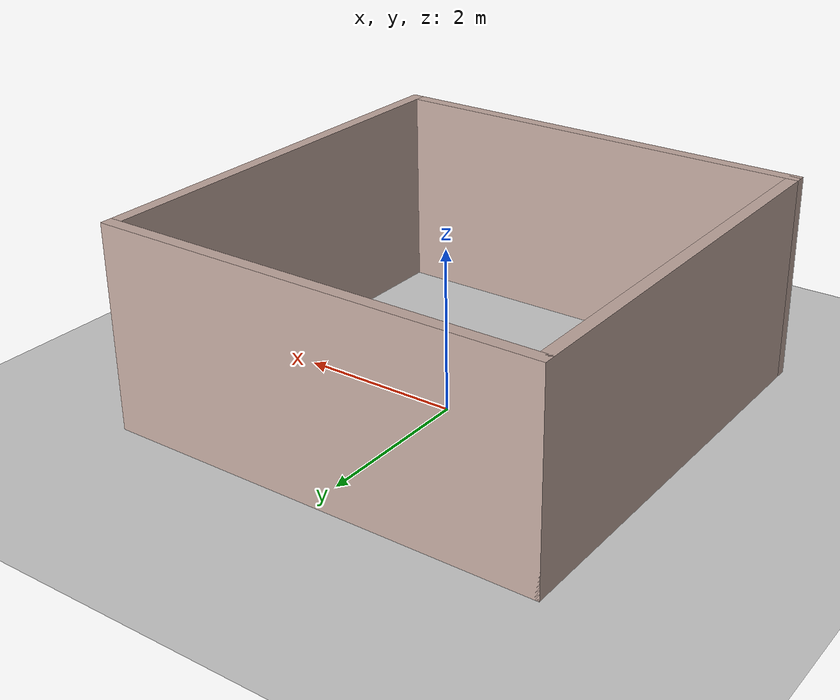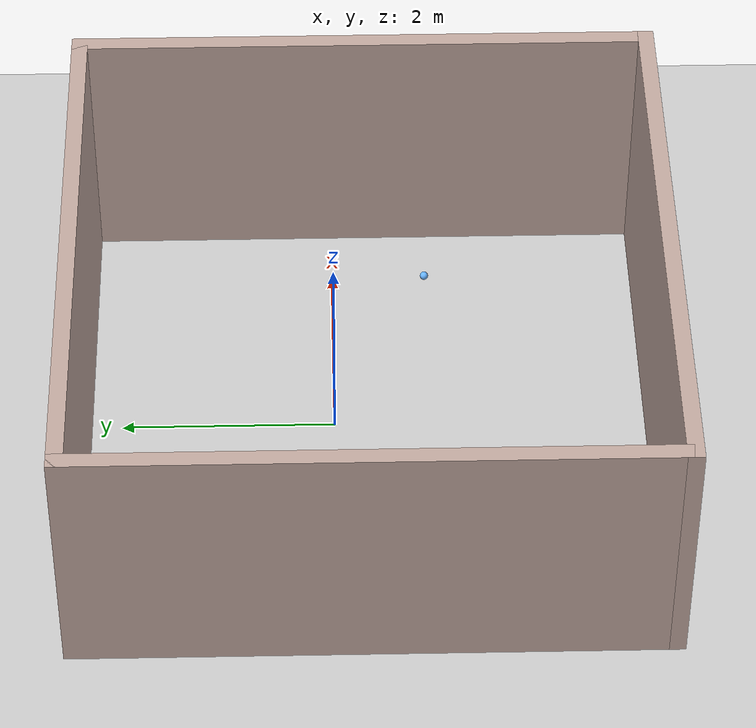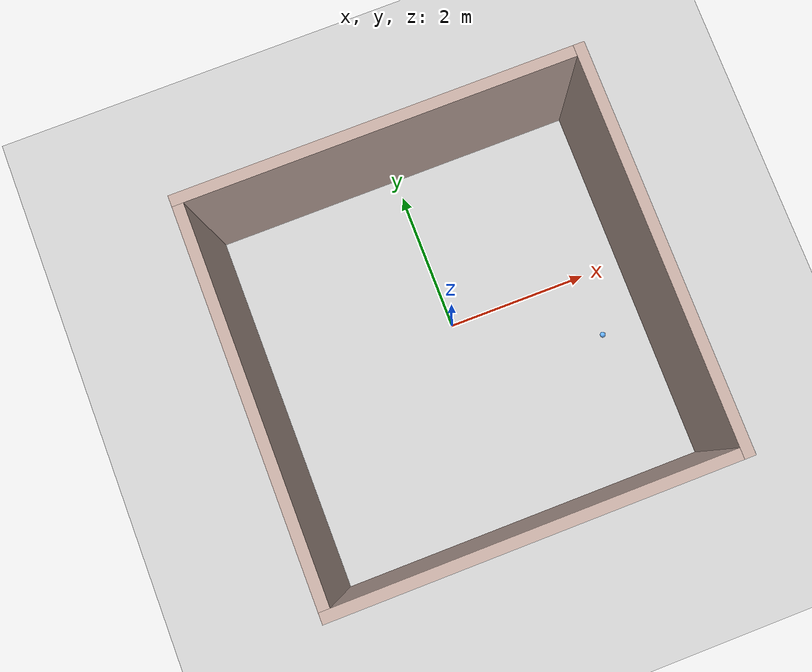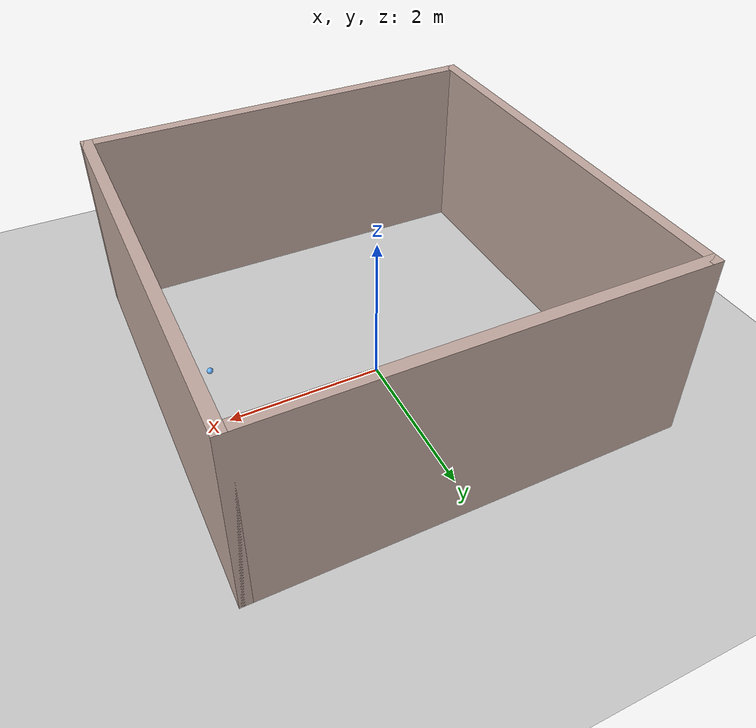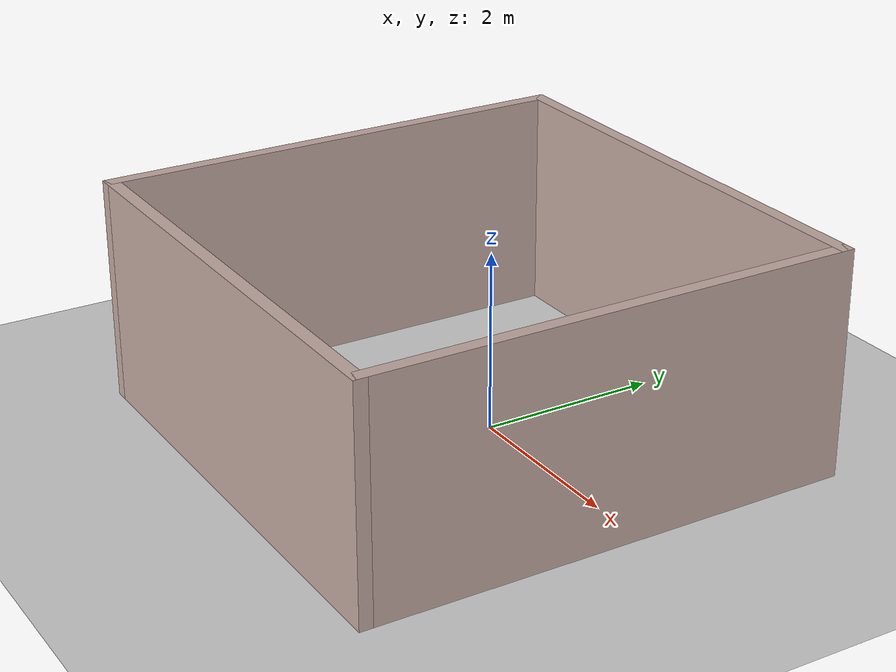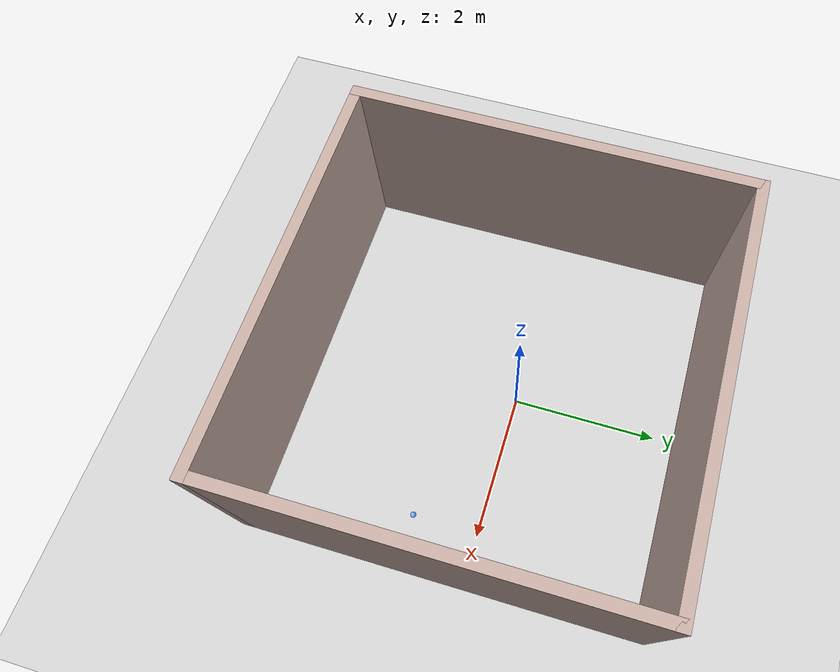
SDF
<sdf version="1.7">
 <world name="default">
  <light name="sun" type="directional">
   <pose>0 0 10 0 -0 0</pose>
   <diffuse>0.8 0.8 0.8 1</diffuse>
   <specular>0.2 0.2 0.2 1</specular>
   <attenuation>
    <range>1000</range>
    <constant>0.9</constant>
    <linear>0.01</linear>
    <quadratic>0.001</quadratic>
   </attenuation>
   <direction>-0.5 0.1 -0.9</direction>
   <spot><inner_angle>0</inner_angle><outer_angle>0</outer_angle><falloff>0</falloff></spot>
  </light>
  <model name="ground_plane">
   <static>1</static>
   <link name="link">
    <collision name="collision">
     <geometry><plane><normal>0 0 1</normal><size>100 100</size></plane></geometry>
     <surface>
      <contact><collide_bitmask>65535</collide_bitmask></contact>
      <friction><ode><mu>100</mu><mu2>50</mu2></ode></friction>
     </surface>
    </collision>
    <visual name="visual">
     <cast_shadows>0</cast_shadows>
     <geometry><plane><normal>0 0 1</normal><size>100 100</size></plane></geometry>
     <material>
      <script><uri>file://media/materials/scripts/gazebo.material</uri><name>Gazebo/Grey</name></script>
     </material>
    </visual>
   </link>
  </model>
  <gravity>0 0 -9.8</gravity>
  <magnetic_field>6e-06 2.3e-05 -4.2e-05</magnetic_field>
  <atmosphere type="adiabatic"/>
  <physics type="ode">
   <max_step_size>0.001</max_step_size>
   <real_time_factor>1</real_time_factor>
   <real_time_update_rate>1000</real_time_update_rate>
  </physics>
  <scene><ambient>0.4 0.4 0.4 1</ambient><background>0.7 0.7 0.7 1</background><shadows>1</shadows></scene>
  <spherical_coordinates>
   <surface_model>EARTH_WGS84</surface_model>
   <latitude_deg>0</latitude_deg>
   <longitude_deg>0</longitude_deg>
   <elevation>0</elevation>
   <heading_deg>0</heading_deg>
  </spherical_coordinates>
  <model name="new_vision">
   <pose>-0.038318 0.016028 0 0 -0 0</pose>
   <link name="Wall_0">
    <collision name="Wall_0_Collision">
     <geometry><box><size>5.5 0.15 2.5</size></box></geometry>
     <pose>0 0 1.25 0 -0 0</pose>
    </collision>
    <visual name="Wall_0_Visual">
     <pose>0 0 1.25 0 -0 0</pose>
     <geometry><box><size>5.5 0.15 2.5</size></box></geometry>
     <material>
      <script><uri>file://media/materials/scripts/gazebo.material</uri><name>Gazebo/Grey</name></script>
      <ambient>0.760784 0.662745 0.627451 1</ambient>
     </material>
     <meta><layer>0</layer></meta>
    </visual>
    <pose>0 2.3425 0 0 -0 0</pose>
   </link>
   <link name="Wall_3">
    <collision name="Wall_3_Collision">
     <geometry><box><size>5.5 0.15 2.5</size></box></geometry>
     <pose>0 0 1.25 0 -0 0</pose>
    </collision>
    <visual name="Wall_3_Visual">
     <pose>0 0 1.25 0 -0 0</pose>
     <geometry><box><size>5.5 0.15 2.5</size></box></geometry>
     <material>
      <script><uri>file://media/materials/scripts/gazebo.material</uri><name>Gazebo/Grey</name></script>
      <ambient>0.760784 0.662745 0.627451 1</ambient>
     </material>
     <meta><layer>0</layer></meta>
    </visual>
    <pose>2.675 -0.3325 0 0 -0 -1.5708</pose>
   </link>
   <link name="Wall_4">
    <collision name="Wall_4_Collision">
     <geometry><box><size>5.5 0.15 2.5</size></box></geometry>
     <pose>0 0 1.25 0 -0 0</pose>
    </collision>
    <visual name="Wall_4_Visual">
     <pose>0 0 1.25 0 -0 0</pose>
     <geometry><box><size>5.5 0.15 2.5</size></box></geometry>
     <material>
      <script><uri>file://media/materials/scripts/gazebo.material</uri><name>Gazebo/Grey</name></script>
      <ambient>0.760784 0.662745 0.627451 1</ambient>
     </material>
     <meta><layer>0</layer></meta>
    </visual>
    <pose>0 -3.0075 0 0 -0 3.14159</pose>
   </link>
   <link name="Wall_5">
    <collision name="Wall_5_Collision">
     <geometry><box><size>5.5 0.15 2.5</size></box></geometry>
     <pose>0 0 1.25 0 -0 0</pose>
    </collision>
    <visual name="Wall_5_Visual">
     <pose>0 0 1.25 0 -0 0</pose>
     <geometry><box><size>5.5 0.15 2.5</size></box></geometry>
     <material>
      <script><uri>file://media/materials/scripts/gazebo.material</uri><name>Gazebo/Grey</name></script>
      <ambient>0.760784 0.662745 0.627451 1</ambient>
     </material>
     <meta><layer>0</layer></meta>
    </visual>
    <pose>-2.675 -0.3325 0 0 -0 1.5708</pose>
   </link>
   <static>1</static>
  </model>
  <model name="moving_ball">
   <pose>1.965 -0.9 0.04 0 0 0</pose>
   <link name="ball">
    <inertial><mass>0.2</mass></inertial>
    <collision name="collision"><geometry><sphere><radius>0.04</radius></sphere></geometry></collision>
    <visual name="visual">
     <geometry><sphere><radius>0.04</radius></sphere></geometry>
     <material><ambient>0.4 0.7 1 1</ambient><diffuse>0.4 0.7 1 1</diffuse></material>
    </visual>
   </link>
  </model>
 </world>
</sdf>
